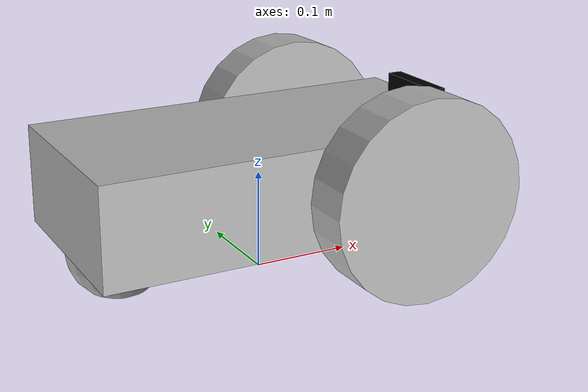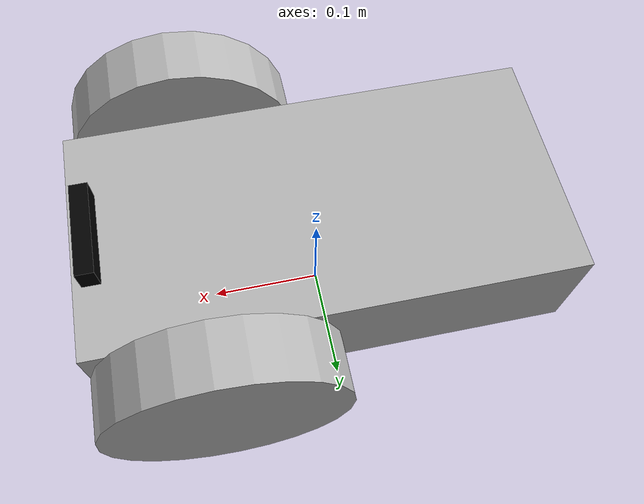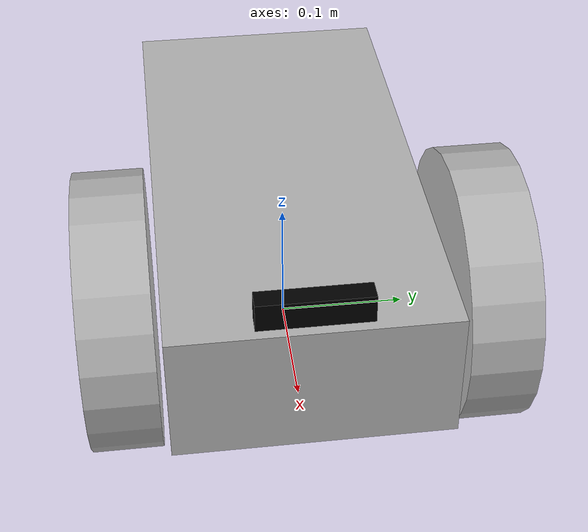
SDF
<?xml version='1.0'?>
<sdf version='1.4'>
  <model name="cam_Rover">
  <static>false</static>

  <link name='chassis'>
            <pose>0 0 .1 0 0 0</pose>

            <collision name='collision'>
              <geometry>
                <box>
                  <size>.4 .2 .1</size>
                </box>
              </geometry>
            </collision>

            <visual name='visual'>
              <geometry>
                <box>
                  <size>.4 .2 .1</size>
                </box>
              </geometry>
            </visual>
            <collision name='caster_collision'>
            <pose>-0.15 0 -0.05 0 0 0</pose>
            <geometry>
                <sphere>
                <radius>.05</radius>
              </sphere>
            </geometry>

            <surface>
              <friction>
                <ode>
                  <mu>0</mu>
                  <mu2>0</mu2>
                  <slip1>1.0</slip1>
                  <slip2>1.0</slip2>
                </ode>
              </friction>
            </surface>
          </collision>

          <visual name='caster_visual'>
            <pose>-0.15 0 -0.05 0 0 0</pose>
            <geometry>
              <sphere>
                <radius>.05</radius>
              </sphere>
            </geometry>
          </visual>
          </link>
          <link name="camera_link">
  <pose>0.19 0 0.16 0 0 0</pose>

  <visual name="camera_visual">
    <pose>-0.005 0 0 0 0 0</pose>
    <geometry>
      <box>
        <size>0.015 0.08 0.022</size>
      </box>
    </geometry>
    <material>
      <ambient>0 0 0 1.0</ambient>
      <diffuse>0 0 0 1.0</diffuse>
      <specular>0.0 0.0 0.0 1.0</specular>
      <emissive>0.0 0.0 0.0 1.0</emissive>
    </material>
  </visual>

  <sensor name="depth_camera" type="camera">
    <always_on>true</always_on>
    <visualize>true</visualize>
    <update_rate>5</update_rate>
    <camera name="camera">
      <horizontal_fov>1.02974</horizontal_fov>
      <image>
        <width>640</width>
        <height>480</height>
        <format>R8G8B8</format>
      </image>
      <clip>
        <near>0.02</near>
        <far>10</far>
      </clip>
      <noise>
        <type>gaussian</type>
        <!-- Noise is sampled independently per pixel on each frame.
             That pixel's noise value is added to each of its color
              channels, which at that point lie in the range [0,1]. -->
        <mean>0.0</mean>
        <stddev>0.007</stddev>
      </noise>
    </camera>
      <plugin name="camera_plugin" filename="libgazebo_ros_openni_kinect.so">
          <baseline>0.2</baseline>
          <alwaysOn>true</alwaysOn>
          <updateRate>0.0</updateRate>
          <cameraName>camera_ir</cameraName>
          <imageTopicName>/camera/color/image_raw</imageTopicName>
          <cameraInfoTopicName>/camera/color/camera_info</cameraInfoTopicName>
          <depthImageTopicName>/camera/depth/image_raw</depthImageTopicName>
          <depthImageCameraInfoTopicName>/camera/depth/camera_info</depthImageCameraInfoTopicName>
          <pointCloudTopicName>/camera/depth/points</pointCloudTopicName>
          <frameName>camera_link</frameName>
          <pointCloudCutoff>0.5</pointCloudCutoff>
          <pointCloudCutoffMax>3.0</pointCloudCutoffMax>
          <distortionK1>0</distortionK1>
          <distortionK2>0</distortionK2>
          <distortionK3>0</distortionK3>
          <distortionT1>0</distortionT1>
          <distortionT2>0</distortionT2>
          <CxPrime>0</CxPrime>
          <Cx>0</Cx>
          <Cy>0</Cy>
          <focalLength>0</focalLength>
          <hackBaseline>0</hackBaseline>
        </plugin>
  </sensor>
  </link>
          <link name="left_joint">
        <pose>0.1 0.13 0.1 0 1.5707 1.5707</pose>

        <collision name="collision">
          <geometry>
            <cylinder>
              <radius>.1</radius>
              <length>.05</length>
            </cylinder>
          </geometry>
        </collision>
        <visual name="visual">
          <geometry>
            <cylinder>
              <radius>.1</radius>
              <length>.05</length>
            </cylinder>
          </geometry>
        </visual>
      </link>
      <link name="right_joint">
        <pose>0.1 -0.13 0.1 0 1.5707 1.5707</pose>
        <collision name="collision">
          <geometry>
            <cylinder>
              <radius>.1</radius>
              <length>.05</length>
            </cylinder>
          </geometry>
        </collision>
        <visual name="visual">
          <geometry>
            <cylinder>
              <radius>.1</radius>
              <length>.05</length>
            </cylinder>
          </geometry>
        </visual>
      </link>
      <joint type="fixed" name="camera_joint">
        <pose>0 0 0 0 0 0</pose>
        <child>camera_link</child>
        <parent>chassis</parent>
        <axis>
          <xyz>0 1 0</xyz>
        </axis>
      </joint>
<joint type="revolute" name="left_wheel_joint">
        <pose>0 0 -0.03 0 0 0</pose>
        <child>left_joint</child>
        <parent>chassis</parent>
        <axis>
          <xyz>0 1 0</xyz>
        </axis>
      </joint>
      <joint type="revolute" name="right_wheel_joint">
        <pose>0 0 0.03 0 0 0</pose>
        <child>right_joint</child>
        <parent>chassis</parent>
        <axis>
          <xyz>0 1 0</xyz>
        </axis>
      </joint>
  </model>
</sdf>
